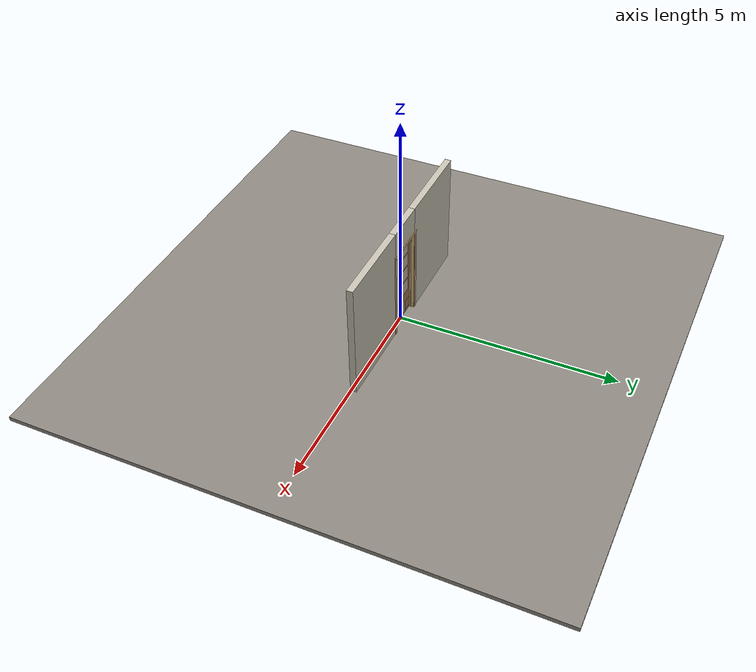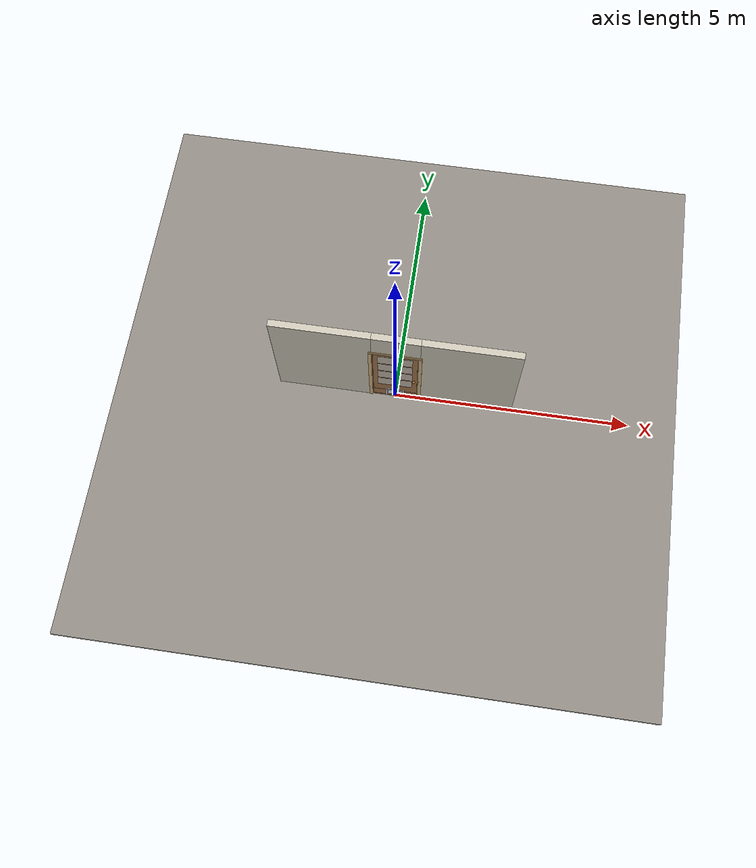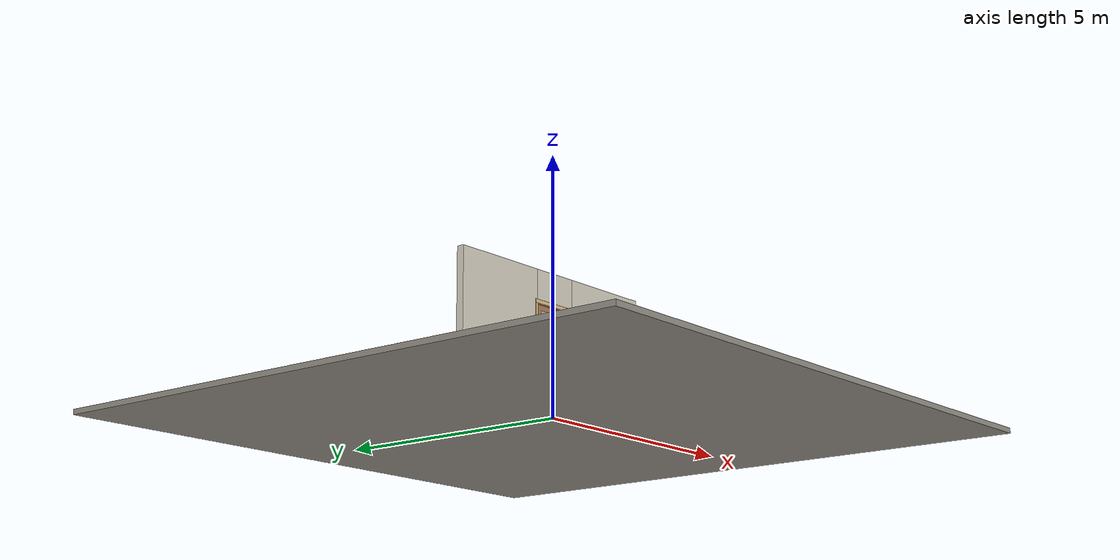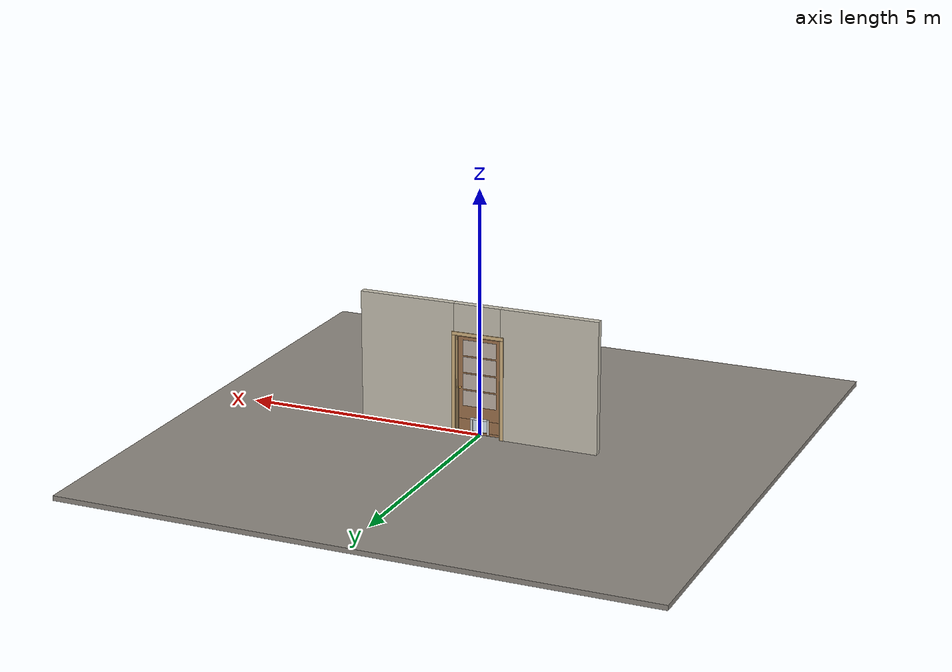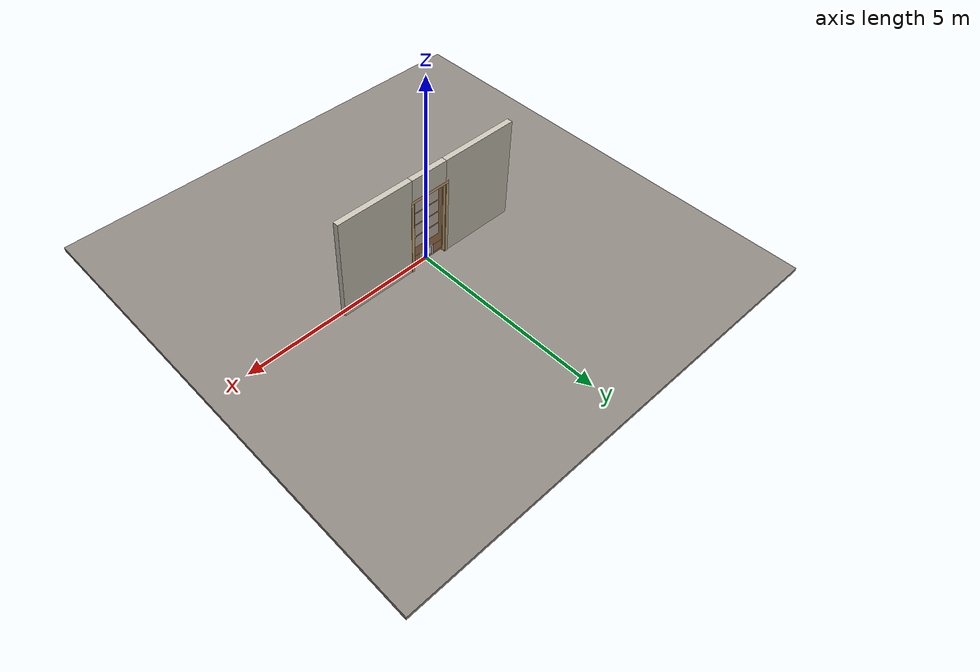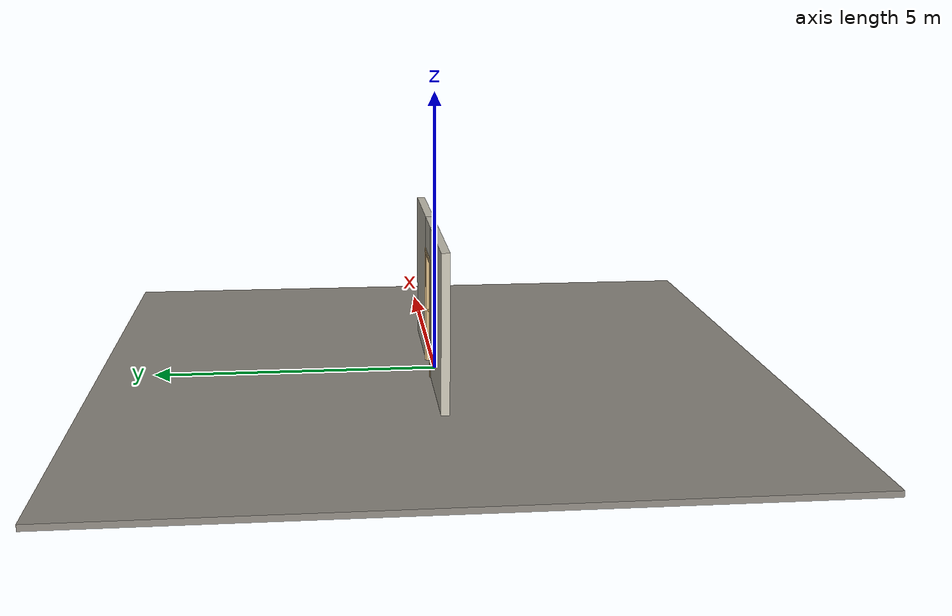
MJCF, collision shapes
<?xml version="1.0" ?>
<mujoco model="db0823_swing_single_full">
  <compiler angle="radian" meshdir="../../hardware" texturedir="../../textures" autolimits="true" inertiafromgeom="false"/>
  <option timestep="0.002" integrator="implicitfast" cone="elliptic" impratio="10" noslip_iterations="3">
    <flag multiccd="enable"/>
  </option>
  <size memory="16M"/>
  <default>
    <geom condim="4" solref="0.005 1" solimp="0.95 0.99 0.001"/>
    <joint solreflimit="0.005 1" solimplimit="0.95 0.99 0.001"/>
    <tendon solreflimit="0.005 1"/>
    <equality solref="0.002 1"/>
  </default>
  <visual>
    <headlight ambient="0.4 0.4 0.4" diffuse="0.7 0.7 0.7" specular="0.2 0.2 0.2"/>
    <quality shadowsize="4096"/>
    <map znear="0.01" zfar="60"/>
  </visual>
  <asset>
    <mesh name="hinge_96510cf394" file="hinge_96510cf394.obj"/>
    <mesh name="hinge_jamb_7fd4ca52b2" file="hinge_jamb_7fd4ca52b2.obj"/>
    <mesh name="knob_d1888f6f03" file="knob_d1888f6f03.obj"/>
    <material name="mat_floor" rgba="0.55 0.53 0.5 1" specular="0.2" shininess="0.15" reflectance="0"/>
    <material name="mat_wall" rgba="0.78 0.76 0.7 1" specular="0.2" shininess="0.1" reflectance="0"/>
    <material name="mat_leaf" rgba="0.62 0.45 0.3 1" specular="0.2" shininess="0.5" reflectance="0"/>
    <material name="mat_glass" rgba="0.9 0.93 0.95 0.6" specular="0.2" shininess="0.5" reflectance="0.1"/>
    <material name="mat_hinge" rgba="0.65 0.66 0.68 1" specular="0.74" shininess="0.5" reflectance="0.36"/>
    <material name="mat_op_brass" rgba="0.85 0.66 0.3 1" specular="0.8" shininess="0.75" reflectance="0.4"/>
    <material name="mat_trim" rgba="0.85 0.66 0.3 1" specular="0.8" shininess="0.75" reflectance="0.4"/>
    <material name="mat_bolt" rgba="0.85 0.66 0.3 1" specular="0.8" shininess="0.75" reflectance="0.4"/>
    <material name="mat_frame" rgba="0.82 0.7 0.5 1" specular="0.2" shininess="0.45" reflectance="0"/>
    <material name="mat_petframe" rgba="0.92 0.92 0.9 1" specular="0.2" shininess="0.6" reflectance="0"/>
    <material name="mat_petflap" rgba="0.85 0.9 0.95 0.45" specular="0.2" shininess="0.7" reflectance="0.1"/>
    <texture name="skybox" type="skybox" builtin="gradient" rgb1="0.6 0.7 0.85" rgb2="0.9 0.92 0.95" width="256" height="256"/>
  </asset>
  <worldbody>
    <light name="sun" pos="1.5 -2.5 4" dir="-0.3 0.5 -0.8" directional="true" diffuse="0.8 0.8 0.8" specular="0.3 0.3 0.3" castshadow="true"/>
    <light name="fill" pos="-1.5 2.5 3" dir="0.3 -0.5 -0.7" directional="true" diffuse="0.35 0.35 0.4" castshadow="false"/>
    <camera name="robot_view" pos="0 -2.494187 1.734312" xyaxes="1 0 0 0 0.26963 0.962964" fovy="52"/>
    <camera name="far_view" pos="0 2.590187 1.734312" xyaxes="-1 0 0 0 -0.26963 0.962964" fovy="52"/>
    <camera name="iso" pos="1.932062 -2.087438 2.141063" xyaxes="0.741536 0.670913 0 -0.242917 0.268487 0.932151" fovy="46"/>
    <camera name="detail_handle" pos="0.5765 -0.864 1.245" xyaxes="0.97561 0.219512 0 -0.070934 0.315262 0.94635" fovy="38"/>
    <geom name="floor" type="box" size="6 6 0.05" pos="0 0 -0.05" material="mat_floor" group="0" contype="1" conaffinity="1" friction="0.8 0.005 0.0001" density="2400"/>
    <geom name="wall_left" type="box" size="1.01025 0.0725 1.35" pos="-1.48975 0.048 1.35" material="mat_wall" group="0" contype="1" conaffinity="1" friction="0.6 0.005 0.0001" density="800"/>
    <geom name="wall_right" type="box" size="0.99525 0.0725 1.35" pos="1.50475 0.048 1.35" material="mat_wall" group="0" contype="1" conaffinity="1" friction="0.6 0.005 0.0001" density="800"/>
    <geom name="wall_header" type="box" size="0.4945 0.0725 0.303" pos="0.015 0.048 2.397" material="mat_wall" group="0" contype="1" conaffinity="1" friction="0.6 0.005 0.0001" density="800"/>
    <geom name="hinge_0_jamb" type="mesh" mesh="hinge_jamb_7fd4ca52b2" pos="-0.4575 -0.0245 0.259" material="mat_hinge" group="1" contype="0" conaffinity="0" density="7850"/>
    <geom name="hinge_1_jamb" type="mesh" mesh="hinge_jamb_7fd4ca52b2" pos="-0.4575 -0.0245 1.025" material="mat_hinge" group="1" contype="0" conaffinity="0" density="7850"/>
    <geom name="hinge_2_jamb" type="mesh" mesh="hinge_jamb_7fd4ca52b2" pos="-0.4575 -0.0245 1.861" material="mat_hinge" group="1" contype="0" conaffinity="0" density="7850"/>
    <geom name="jamb_hinge" type="box" size="0.0095 0.0725 1.0225" pos="-0.47 0.048 1.0225" material="mat_frame" group="0" contype="1" conaffinity="1" friction="0.6 0.005 0.0001" density="400"/>
    <geom name="strike_965_wall_n" type="box" size="0.0245 0.056325 0.0167" pos="0.485 0.064175 0.965" material="mat_frame" group="0" contype="1" conaffinity="1" friction="0.6 0.005 0.0001" density="400"/>
    <geom name="strike_965_wall_p" type="box" size="0.0245 0.008 0.0167" pos="0.485 -0.01585 0.965" material="mat_frame" group="0" contype="1" conaffinity="1" friction="0.6 0.005 0.0001" density="400"/>
    <geom name="strike_965_ramp" type="box" size="0.0245 0.01649 0.0167" pos="0.489636 -0.028673 0.965" quat="0.977148 0 0 0.212558" material="mat_frame" group="0" contype="1" conaffinity="1" friction="0.12 0.005 0.0001" density="400"/>
    <geom name="strike_965_back" type="box" size="0.01615 0.00785 0.0167" pos="0.49335 0 0.965" material="mat_frame" group="0" contype="1" conaffinity="1" friction="0.6 0.005 0.0001" density="400"/>
    <geom name="jamb_strike_0" type="box" size="0.0245 0.0725 0.47415" pos="0.485 0.048 0.47415" material="mat_frame" group="0" contype="1" conaffinity="1" friction="0.6 0.005 0.0001" density="400"/>
    <geom name="jamb_strike_1" type="box" size="0.0245 0.0725 0.53165" pos="0.485 0.048 1.51335" material="mat_frame" group="0" contype="1" conaffinity="1" friction="0.6 0.005 0.0001" density="400"/>
    <geom name="jamb_head" type="box" size="0.4945 0.0725 0.0095" pos="0.015 0.048 2.0545" material="mat_frame" group="0" contype="1" conaffinity="1" friction="0.6 0.005 0.0001" density="400"/>
    <geom name="head_stud" type="box" size="0.4945 0.0725 0.015" pos="0.015 0.048 2.079" material="mat_wall" group="0" contype="1" conaffinity="1" friction="0.6 0.005 0.0001" density="500"/>
    <geom name="stop_hinge" type="box" size="0.0055 0.016 1.0225" pos="-0.455 0.034 1.0225" material="mat_frame" group="0" contype="1" conaffinity="1" friction="0.6 0.005 0.0001" density="400"/>
    <geom name="stop_strike" type="box" size="0.0055 0.016 1.0225" pos="0.455 0.034 1.0225" material="mat_frame" group="0" contype="1" conaffinity="1" friction="0.6 0.005 0.0001" density="400"/>
    <geom name="stop_head" type="box" size="0.4605 0.016 0.0055" pos="0 0.034 2.0395" material="mat_frame" group="0" contype="1" conaffinity="1" friction="0.6 0.005 0.0001" density="400"/>
    <geom name="casing_l_n" type="box" size="0.035 0.008 1.032" pos="-0.5095 -0.0325 1.0225" material="mat_frame" group="2" contype="0" conaffinity="0" density="400"/>
    <geom name="casing_r_n" type="box" size="0.035 0.008 1.032" pos="0.5095 -0.0325 1.0225" material="mat_frame" group="2" contype="0" conaffinity="0" density="400"/>
    <geom name="casing_h_n" type="box" size="0.5445 0.008 0.035" pos="0 -0.0325 2.094" material="mat_frame" group="2" contype="0" conaffinity="0" density="400"/>
    <geom name="casing_l_p" type="box" size="0.035 0.008 1.032" pos="-0.5095 0.1285 1.0225" material="mat_frame" group="2" contype="0" conaffinity="0" density="400"/>
    <geom name="casing_r_p" type="box" size="0.035 0.008 1.032" pos="0.5095 0.1285 1.0225" material="mat_frame" group="2" contype="0" conaffinity="0" density="400"/>
    <geom name="casing_h_p" type="box" size="0.5445 0.008 0.035" pos="0 0.1285 2.094" material="mat_frame" group="2" contype="0" conaffinity="0" density="400"/>
    <site name="approach_point" pos="0 -1.5 0" quat="1 0 0 0" size="0.05" rgba="0.2 0.9 0.2 0.5" group="4"/>
    <site name="goal_point" pos="0 1.5 0" quat="1 0 0 0" size="0.05" rgba="0.2 0.9 0.2 0.5" group="4"/>
    <site name="door_plane_center" pos="0 0 1.0225" quat="1 0 0 0" size="0.02" rgba="0.2 0.9 0.2 0.5" group="4"/>
    <body name="leaf" pos="-0.4605 0 0">
      <inertial pos="0.451667 -0.000276 0.972891" mass="37.892648" quat="-0.499895 0.498977 0.500993 0.500133" diaginertia="2.648754433 13.61470492 16.254669197"/>
      <joint name="leaf_hinge" type="hinge" axis="0 0 -1" pos="0.003 -0.0245 0" limited="true" range="0 2.268928" damping="0.30611" frictionloss="0.268355" armature="0.02"/>
      <geom name="leaf_slab_below" type="box" size="0.457 0.0175 0.0245" pos="0.46 0 0.0335" material="mat_leaf" group="0" contype="1" conaffinity="1" friction="0.4 0.005 0.0001" density="1"/>
      <geom name="leaf_slab_above" type="box" size="0.457 0.0175 0.8655" pos="0.46 0 1.1755" material="mat_leaf" group="0" contype="1" conaffinity="1" friction="0.4 0.005 0.0001" density="1"/>
      <geom name="leaf_slab_left" type="box" size="0.148 0.0175 0.126" pos="0.151 0 0.184" material="mat_leaf" group="0" contype="1" conaffinity="1" friction="0.4 0.005 0.0001" density="1"/>
      <geom name="leaf_slab_right" type="box" size="0.148 0.0175 0.126" pos="0.769 0 0.184" material="mat_leaf" group="0" contype="1" conaffinity="1" friction="0.4 0.005 0.0001" density="1"/>
      <geom name="leaf_glass_2" type="box" size="0.17073 0.0183 0.158688" pos="0.27427 0 0.738584" material="mat_glass" group="1" contype="0" conaffinity="0" density="1"/>
      <geom name="leaf_glass_3" type="box" size="0.17073 0.0183 0.158688" pos="0.64573 0 0.738584" material="mat_glass" group="1" contype="0" conaffinity="0" density="1"/>
      <geom name="leaf_glass_4" type="box" size="0.17073 0.0183 0.158688" pos="0.27427 0 1.08596" material="mat_glass" group="1" contype="0" conaffinity="0" density="1"/>
      <geom name="leaf_glass_5" type="box" size="0.17073 0.0183 0.158688" pos="0.64573 0 1.08596" material="mat_glass" group="1" contype="0" conaffinity="0" density="1"/>
      <geom name="leaf_glass_6" type="box" size="0.17073 0.0183 0.158688" pos="0.27427 0 1.433336" material="mat_glass" group="1" contype="0" conaffinity="0" density="1"/>
      <geom name="leaf_glass_7" type="box" size="0.17073 0.0183 0.158688" pos="0.64573 0 1.433336" material="mat_glass" group="1" contype="0" conaffinity="0" density="1"/>
      <geom name="leaf_glass_8" type="box" size="0.17073 0.0183 0.158688" pos="0.27427 0 1.780712" material="mat_glass" group="1" contype="0" conaffinity="0" density="1"/>
      <geom name="leaf_glass_9" type="box" size="0.17073 0.0183 0.158688" pos="0.64573 0 1.780712" material="mat_glass" group="1" contype="0" conaffinity="0" density="1"/>
      <geom name="hinge_0" type="mesh" mesh="hinge_96510cf394" pos="0.003 -0.0245 0.259" material="mat_hinge" group="1" contype="0" conaffinity="0" density="7850"/>
      <geom name="hinge_1" type="mesh" mesh="hinge_96510cf394" pos="0.003 -0.0245 1.025" material="mat_hinge" group="1" contype="0" conaffinity="0" density="7850"/>
      <geom name="hinge_2" type="mesh" mesh="hinge_96510cf394" pos="0.003 -0.0245 1.861" material="mat_hinge" group="1" contype="0" conaffinity="0" density="7850"/>
      <geom name="leaf_latch_bolt_faceplate" type="box" size="0.0006 0.01235 0.0267" pos="0.9164 0 0.965" material="mat_bolt" group="1" contype="0" conaffinity="0" density="8500"/>
      <geom name="pet_frame_top" type="box" size="0.2 0.0235 0.02" pos="0.46 0 0.329" material="mat_petframe" group="2" contype="0" conaffinity="0" density="1200"/>
      <geom name="pet_frame_l" type="box" size="0.02 0.0235 0.165" pos="0.28 0 0.184" material="mat_petframe" group="2" contype="0" conaffinity="0" density="1200"/>
      <geom name="pet_frame_r" type="box" size="0.02 0.0235 0.165" pos="0.64 0 0.184" material="mat_petframe" group="2" contype="0" conaffinity="0" density="1200"/>
      <site name="leaf_edge_mid" pos="0.917 0 1.016" quat="1 0 0 0" size="0.02" rgba="0.2 0.9 0.2 0.5" group="4"/>
      <body name="leaf_handle" pos="0.857 0 0.965">
        <inertial pos="0 0 0" mass="1.143961" quat="-0.5 0.5 -0.5 0.5" diaginertia="0.00031237 0.003706292 0.003706292"/>
        <joint name="leaf_handle_hinge" type="hinge" axis="0 -1 0" limited="true" range="0 0.87" damping="0.143613" frictionloss="0.038" stiffness="0.5" springref="-0.5" armature="0.01"/>
        <geom name="leaf_handle_spindle" type="cylinder" size="0.006 0.0255" pos="0 0 0" quat="0.707107 -0.707107 0 0" material="mat_op_brass" group="1" contype="0" conaffinity="0" density="7850"/>
        <geom name="leaf_handle_knob_n" type="mesh" mesh="knob_d1888f6f03" pos="0 -0.0175 0" quat="0.707107 0.707107 0 0" material="mat_op_brass" group="1" contype="0" conaffinity="0" density="3000"/>
        <geom name="leaf_handle_knob_col_n" type="sphere" size="0.0243" pos="0 -0.064 0" material="mat_op_brass" group="0" contype="1" conaffinity="1" friction="0.9 0.01 0.0001" density="3000"/>
        <geom name="leaf_handle_knob_neck_n" type="cylinder" size="0.011 0.012" pos="0 -0.0295 0" quat="0.707107 -0.707107 0 0" material="mat_op_brass" group="3" contype="1" conaffinity="1" rgba="0.8 0.3 0.3 0.25" friction="0.6 0.005 0.0001" density="3000"/>
        <geom name="leaf_handle_knob_p" type="mesh" mesh="knob_d1888f6f03" pos="0 0.0175 0" quat="-0.707107 0.707107 0 0" material="mat_op_brass" group="1" contype="0" conaffinity="0" density="3000"/>
        <geom name="leaf_handle_knob_col_p" type="sphere" size="0.0243" pos="0 0.064 0" material="mat_op_brass" group="0" contype="1" conaffinity="1" friction="0.9 0.01 0.0001" density="3000"/>
        <geom name="leaf_handle_knob_neck_p" type="cylinder" size="0.011 0.012" pos="0 0.0295 0" quat="0.707107 -0.707107 0 0" material="mat_op_brass" group="3" contype="1" conaffinity="1" rgba="0.8 0.3 0.3 0.25" friction="0.6 0.005 0.0001" density="3000"/>
        <site name="leaf_handle_grip_n" pos="0 -0.064 0" quat="1 0 0 0" size="0.012" rgba="0.2 0.9 0.2 0.5" group="4"/>
        <site name="leaf_handle_grip_p" pos="0 0.064 0" quat="1 0 0 0" size="0.012" rgba="0.2 0.9 0.2 0.5" group="4"/>
      </body>
      <body name="leaf_latch_bolt" pos="0.917 0 0.965">
        <inertial pos="-0.00865 0 0" mass="0.041419" quat="0.92388 -0.382683 0 0" diaginertia="0.000000798 0.000005598 0.000005598"/>
        <joint name="leaf_latch_bolt_slide" type="slide" axis="-1 0 0" limited="true" range="0 0.0127" damping="2" frictionloss="0.3" stiffness="300" springref="-0.008333" armature="0.1"/>
        <geom name="leaf_latch_bolt_capsule" type="capsule" size="0.00635 0.015" pos="-0.00865 0 0" quat="0.707107 0 0.707107 0" material="mat_bolt" group="0" contype="1" conaffinity="1" friction="0.2 0.005 0.0001" density="8500"/>
      </body>
      <body name="pet_flap" pos="0.46 0 0.309">
        <inertial pos="0 0 -0.125" mass="0.119283" quat="0 0 0.707107 0.707107" diaginertia="0.0005823 0.000967784 0.001549766"/>
        <joint name="pet_flap_hinge" type="hinge" axis="1 0 0" limited="true" range="-1.45 1.45" damping="0.02" frictionloss="0.02" armature="0.005"/>
        <geom name="pet_flap_geom" type="box" size="0.156 0.002 0.121" pos="0 0 -0.125" material="mat_petflap" group="0" contype="1" conaffinity="1" friction="0.6 0.005 0.0001" density="1250"/>
      </body>
    </body>
  </worldbody>
  <tendon>
    <fixed name="leaf_latch_bolt_coupling" limited="true" range="0 10">
      <joint joint="leaf_latch_bolt_slide" coef="1"/>
      <joint joint="leaf_handle_hinge" coef="-0.015679"/>
    </fixed>
  </tendon>
  <sensor>
    <jointpos name="leaf_hinge_pos" joint="leaf_hinge"/>
    <jointvel name="leaf_hinge_vel" joint="leaf_hinge"/>
    <jointpos name="leaf_handle_hinge_pos" joint="leaf_handle_hinge"/>
    <jointvel name="leaf_handle_hinge_vel" joint="leaf_handle_hinge"/>
    <jointpos name="leaf_latch_bolt_slide_pos" joint="leaf_latch_bolt_slide"/>
    <jointvel name="leaf_latch_bolt_slide_vel" joint="leaf_latch_bolt_slide"/>
    <jointpos name="pet_flap_hinge_pos" joint="pet_flap_hinge"/>
    <jointvel name="pet_flap_hinge_vel" joint="pet_flap_hinge"/>
  </sensor>
</mujoco>
